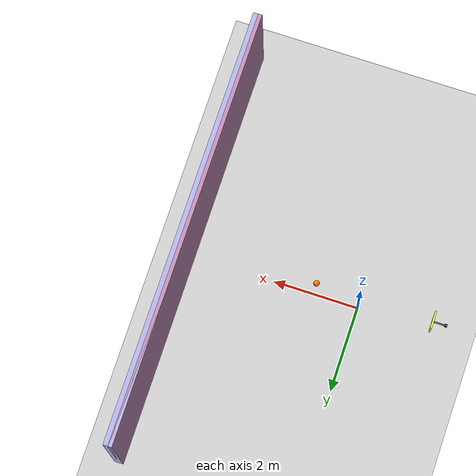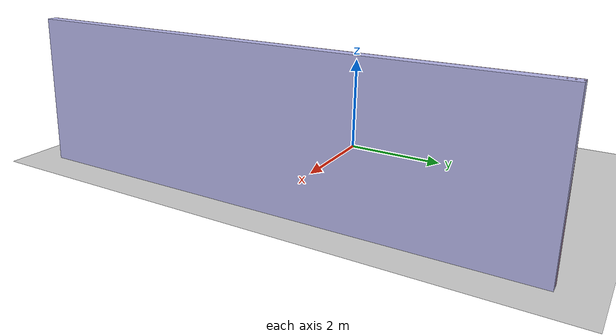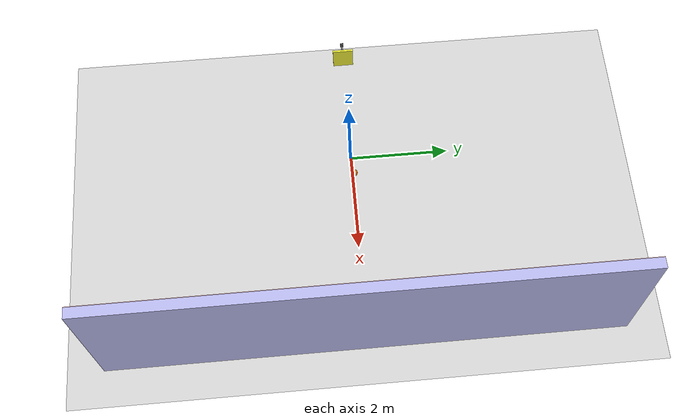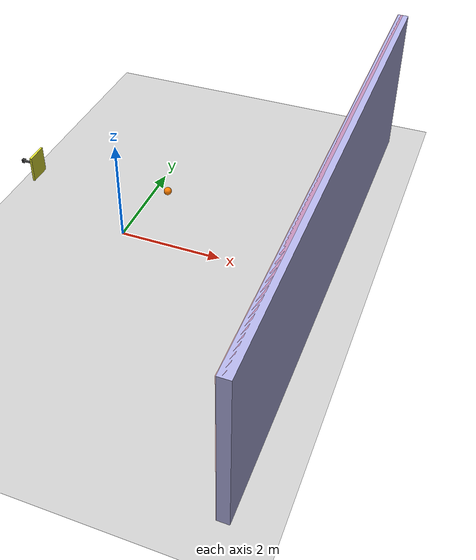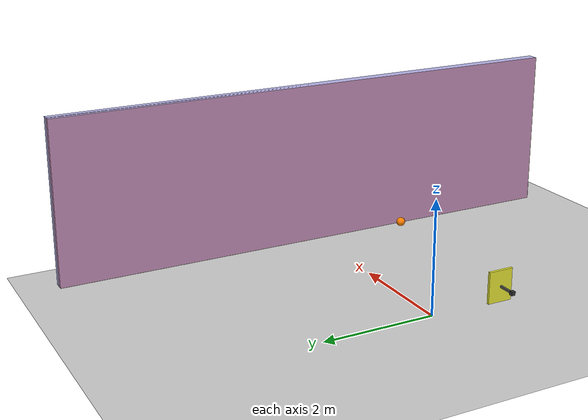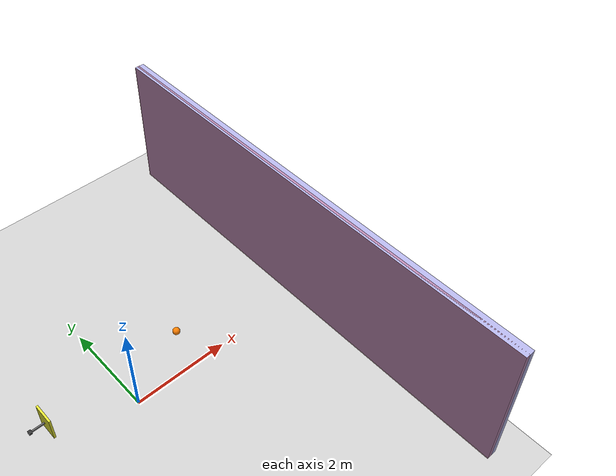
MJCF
<mujoco model="tennis_wall">
    <compiler angle="degree" coordinate="local" inertiafromgeom="true" />
    <option integrator="RK4" timestep="0.002" />
    <size nconmax="500" njmax="1000" />
    <default>
        <joint armature="0.1" damping="1" limited="true" />
        <geom condim="3" density="1000" friction="1 0.5 0.5" margin="0.001" rgba="0.8 0.8 0.8 1" />
        <motor ctrlrange="-1 1" ctrllimited="true" />
    </default>
    <asset>
        <texture name="grid" type="2d" builtin="checker" rgb1=".1 .2 .3" rgb2=".2 .3 .4" width="300" height="300" mark="none" />
        <material name="grid" texture="grid" texrepeat="3 3" texuniform="true" reflectance=".2" />
    </asset>
    <worldbody>
        <light diffuse=".8 .8 .8" pos="0 0 5" specular="0.1 0.1 0.1" />
        <camera name="side" pos="0 -8 3" xyaxes="1 0 0 0 1 2" />
        <geom name="floor" pos="0 0 0" size="8 6 0.1" type="plane" material="grid" />

        <!-- Target wall. A touch on the inner face counts as a wall hit. -->
        <body name="wall" pos="4 0 1.5">
            <site name="wall_sensor" pos="-0.06 0 0" size="0.05 5 1.5" type="box" rgba="1 0 0 0.15" />
            <geom name="wall_geom" size="0.1 5 1.5" type="box" rgba="0.7 0.7 0.9 1" />
        </body>

        <!-- Racket: 3 slide DOFs plus yaw and pitch hinges. The body origin
             sits at the base of the handle, so yaw/pitch rotate the racket
             around the grip like a real swing. -->
        <body name="paddle_base" pos="-2 0 1.2">
            <joint name="paddle_slide_x" type="slide" axis="1 0 0" range="-3 2" damping="5" />
            <joint name="paddle_slide_y" type="slide" axis="0 1 0" range="-3 3" damping="5" />
            <joint name="paddle_slide_z" type="slide" axis="0 0 1" range="-0.8 2" damping="5" />
            <joint name="paddle_yaw" type="hinge" axis="0 0 1" range="-90 90" damping="2" />
            <joint name="paddle_pitch" type="hinge" axis="0 1 0" range="-80 80" damping="2" />
            <geom name="paddle_grip" type="box" pos="0 0 0" size="0.03 0.03 0.03" rgba="0.2 0.2 0.2 1" />
            <geom name="paddle_shaft" type="box" pos="0.15 0 0" size="0.12 0.015 0.015" rgba="0.4 0.4 0.4 1" />
            <site name="paddle_sensor" pos="0.3 0 0" size="0.02 0.2 0.25" type="box" rgba="0 1 0 0.15" />
            <geom name="paddle_face" type="box" pos="0.3 0 0" size="0.02 0.2 0.25" rgba="0.9 0.9 0.2 1" solref="0.01 0.5" />
        </body>

        <!-- Tennis ball. Mass is ~57g like a regulation ball. -->
        <body name="ball" pos="1.0 0 1.3">
            <joint name="ball_x" type="free" limited="false" />
            <geom name="ball_geom" type="sphere" size="0.07" rgba="1 0.5 0 1" mass="0.057" friction="0.3 0.1 0.1" solref="0.01 0.7" />
        </body>
    </worldbody>
    <actuator>
        <motor name="paddle_slide_x_motor" joint="paddle_slide_x" gear="100" />
        <motor name="paddle_slide_y_motor" joint="paddle_slide_y" gear="100" />
        <motor name="paddle_slide_z_motor" joint="paddle_slide_z" gear="100" />
        <motor name="paddle_yaw_motor" joint="paddle_yaw" gear="30" />
        <motor name="paddle_pitch_motor" joint="paddle_pitch" gear="30" />
    </actuator>
    <sensor>
        <touch name="paddle_touch" site="paddle_sensor" />
        <touch name="wall_touch" site="wall_sensor" />
    </sensor>
</mujoco>
